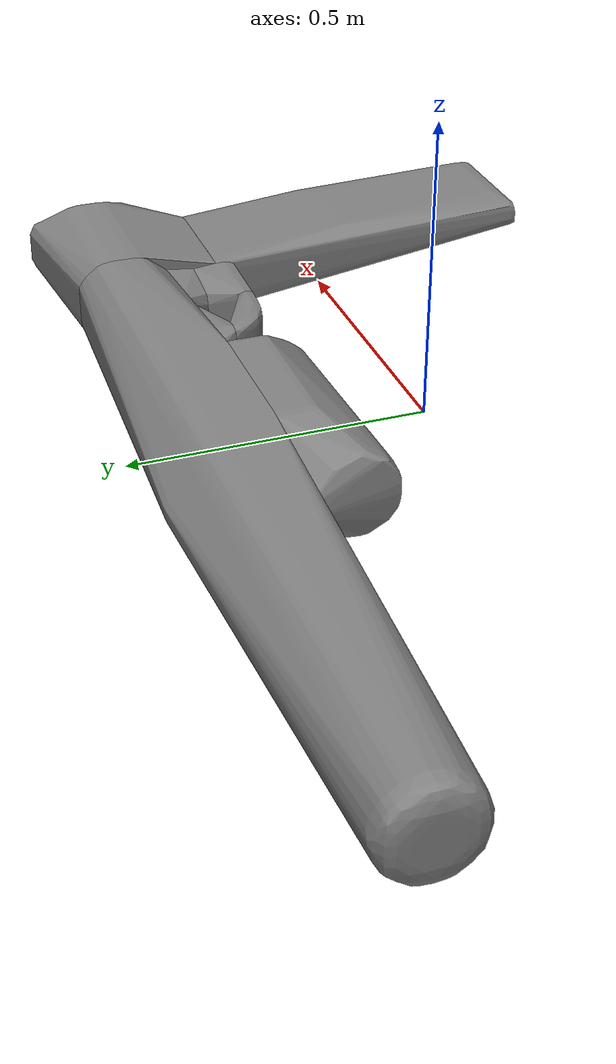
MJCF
<mujoco model="MuJoCo Model">
  <compiler angle="radian" meshdir="."/>

  <asset>
    <mesh name="convex_piece_001.obj" file="meshes/convex_piece_001.obj"/>
    <mesh name="convex_piece_002.obj" file="meshes/convex_piece_002.obj"/>
    <mesh name="convex_piece_000.obj" file="meshes/convex_piece_000.obj"/>
    <mesh name="convex_piece_006.obj" file="meshes/convex_piece_006.obj"/>
    <mesh name="convex_piece_005.obj" file="meshes/convex_piece_005.obj"/>
    <mesh name="convex_piece_004.obj" file="meshes/convex_piece_004.obj"/>
    <mesh name="convex_piece_007.obj" file="meshes/convex_piece_007.obj"/>
    <mesh name="convex_piece_003.obj" file="meshes/convex_piece_003.obj"/>
  </asset>

  <worldbody>
    <body name="object">
      <geom name="object_visual_0" type="mesh" contype="0" conaffinity="0" density="0" mesh="convex_piece_001.obj"/>
      <geom name="object_collision_0" type="mesh" mesh="convex_piece_001.obj"/>
      <geom name="object_visual_1" type="mesh" contype="0" conaffinity="0" density="0" mesh="convex_piece_002.obj"/>
      <geom name="object_collision_1" type="mesh" mesh="convex_piece_002.obj"/>
      <geom name="object_visual_2" type="mesh" contype="0" conaffinity="0" density="0" mesh="convex_piece_000.obj"/>
      <geom name="object_collision_2" type="mesh" mesh="convex_piece_000.obj"/>
      <geom name="object_visual_3" type="mesh" contype="0" conaffinity="0" density="0" mesh="convex_piece_006.obj"/>
      <geom name="object_collision_3" type="mesh" mesh="convex_piece_006.obj"/>
      <geom name="object_visual_4" type="mesh" contype="0" conaffinity="0" density="0" mesh="convex_piece_005.obj"/>
      <geom name="object_collision_4" type="mesh" mesh="convex_piece_005.obj"/>
      <geom name="object_visual_5" type="mesh" contype="0" conaffinity="0" density="0" mesh="convex_piece_004.obj"/>
      <geom name="object_collision_5" type="mesh" mesh="convex_piece_004.obj"/>
      <geom name="object_visual_6" type="mesh" contype="0" conaffinity="0" density="0" mesh="convex_piece_007.obj"/>
      <geom name="object_collision_6" type="mesh" mesh="convex_piece_007.obj"/>
      <geom name="object_visual_7" type="mesh" contype="0" conaffinity="0" density="0" mesh="convex_piece_003.obj"/>
      <geom name="object_collision_7" type="mesh" mesh="convex_piece_003.obj"/>
    </body>
  </worldbody>
</mujoco>
